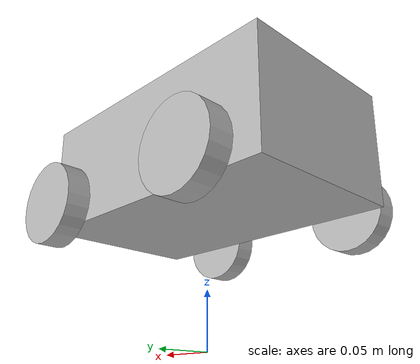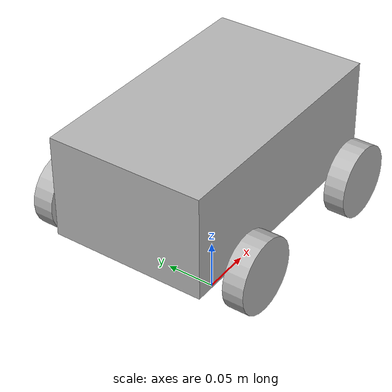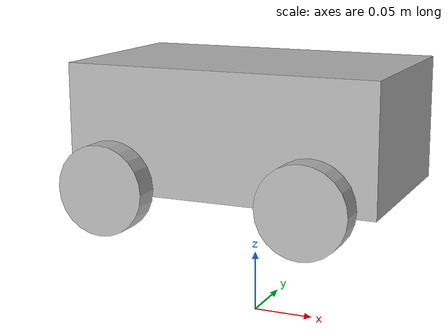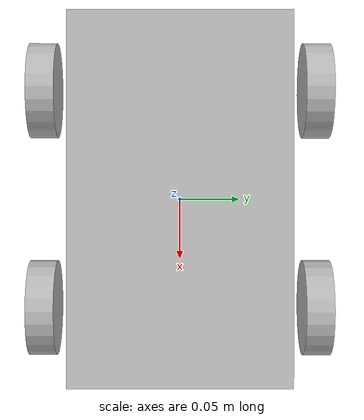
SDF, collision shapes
<?xml version="1.0" ?>
<sdf version="1.5">
  <model name="ugv_mac">

    <link name="base_link">
      <pose>0 0 0.16 0 0 0</pose>
      <inertial>
        <mass>2</mass>
        <inertia>
          <ixx>0.028819942</ixx>
          <iyy>0.047333716</iyy>
          <izz>0.054201740</izz>
          <ixy>0</ixy>
          <ixz>0</ixz>
          <iyz>0</iyz>
        </inertia>
      </inertial>
      <collision name="collision">
        <pose>0 0 0 0 0 0</pose>
        <geometry>
          <box>
            <size>0.25 0.15 0.1</size>
          </box>
        </geometry>
      </collision>
      <visual name="visual">
        <pose>0.045 0 -0.05 1.57 0 0</pose>
        <geometry>
          <mesh>
            <uri>model://ugv_mac/meshes/body.dae</uri>
          </mesh>
        </geometry>
      </visual>
    </link>

    <link name="right_front_wheel">
      <pose>0.08 -0.1 0.12 1.57 0 0</pose>
      <inertial>
        <mass>0.3844</mass>
        <inertia>
          <ixx>0.000324824</ixx>
          <iyy>0.000480000</iyy>
          <izz>0.000324824</izz>
          <ixy>0</ixy>
          <ixz>0</ixz>
          <iyz>0</iyz>
        </inertia>
      </inertial>
      <collision name='right_front_wheel_collision'>
        <pose>0 0 0 0 0 0</pose>
        <geometry>
          <cylinder>
            <length>0.02</length>
            <radius>0.035</radius>
          </cylinder>
        </geometry>
        <surface>
          <friction>
            <ode>
              <mu>0.8</mu>
              <mu2>0.6</mu2>
              <slip1>0.5</slip1>
              <slip2>0.5</slip2>
            </ode>
          </friction>
        </surface>
      </collision>
      <visual name="visual">
        <pose>-0.035 0.015 -0.1 3.14 0 0</pose>
        <geometry>
          <mesh>
            <uri>model://ugv_mac/meshes/front.dae</uri>
          </mesh>
        </geometry>
      </visual>
    </link>

    <link name="right_after_wheel">
      <pose>-0.08 -0.1 0.12 1.57 0 0</pose>
      <inertial>
        <mass>0.3844</mass>
        <inertia>
          <ixx>0.000324824</ixx>
          <iyy>0.000480000</iyy>
          <izz>0.000324824</izz>
          <ixy>0</ixy>
          <ixz>0</ixz>
          <iyz>0</iyz>
        </inertia>
      </inertial>
      <collision name='right_after_wheel_collision'>
        <pose>0 0 0 0 0 0</pose>
        <geometry>
          <cylinder>
            <length>0.02</length>
            <radius>0.035</radius>
          </cylinder>
        </geometry>
        <surface>
          <friction>
            <ode>
              <mu>0.8</mu>
              <mu2>0.6</mu2>
              <slip1>0.5</slip1>
              <slip2>0.5</slip2>
            </ode>
          </friction>
        </surface>
      </collision>
      <visual name="visual">
        <pose>-0.035 0.015 -0.1 3.14 0 0</pose>
        <geometry>
          <mesh>
            <uri>model://ugv_mac/meshes/front.dae</uri>
          </mesh>
        </geometry>
      </visual>
    </link>

    <link name="left_front_wheel">
      <pose>0.08 0.1 0.12 1.57 0 0</pose>
      <inertial>
        <mass>0.3844</mass>
        <inertia>
          <ixx>0.000324824</ixx>
          <iyy>0.000480000</iyy>
          <izz>0.000324824</izz>
          <ixy>0</ixy>
          <ixz>0</ixz>
          <iyz>0</iyz>
        </inertia>
      </inertial>
      <collision name='left_front_wheel_collision'>
        <pose>0 0 0 0 0 0</pose>
        <geometry>
          <cylinder>
            <length>0.02</length>
            <radius>0.035</radius>
          </cylinder>
        </geometry>
        <surface>
          <friction>
            <ode>
              <mu>0.8</mu>
              <mu2>0.6</mu2>
              <slip1>0.5</slip1>
              <slip2>0.5</slip2>
            </ode>
          </friction>
        </surface>
      </collision>
      <visual name="visual">
        <pose>-0.035 -0.015 0.1 0 0 0</pose>
        <geometry>
          <mesh>
            <uri>model://ugv_mac/meshes/front.dae</uri>
          </mesh>
        </geometry>
      </visual>
    </link>

    <link name="left_after_wheel">
      <pose>-0.08 0.1 0.12 1.57 0 0</pose>
      <inertial>
        <mass>0.3844</mass>
        <inertia>
          <ixx>0.000324824</ixx>
          <iyy>0.000480000</iyy>
          <izz>0.000324824</izz>
          <ixy>0</ixy>
          <ixz>0</ixz>
          <iyz>0</iyz>
        </inertia>
      </inertial>
      <collision name='left_after_wheel_collision'>
        <pose>0 0 0 0 0 0</pose>
        <geometry>
          <cylinder>
            <length>0.02</length>
            <radius>0.035</radius>
          </cylinder>
        </geometry>
        <surface>
          <friction>
            <ode>
              <mu>0.8</mu>
              <mu2>0.6</mu2>
              <slip1>0.5</slip1>
              <slip2>0.5</slip2>
            </ode>
          </friction>
        </surface>
      </collision>
      <visual name="visual">
        <pose>-0.035 -0.015 0.1 0 0 0</pose>
        <geometry>
          <mesh>
            <uri>model://ugv_mac/meshes/front.dae</uri>
          </mesh>
        </geometry>
      </visual>
    </link>

    <joint type="revolute" name="right_front_wheel_joint">
      <child>right_front_wheel</child>
      <parent>base_link</parent>
      <axis>
        <xyz>0 1 0</xyz>
        <limit>
          <lower>-1e+16</lower>
          <upper>1e+16</upper>
        </limit>
        <dynamics>
          <spring_reference>0</spring_reference>
          <spring_stiffness>0</spring_stiffness>
        </dynamics>
        <use_parent_model_frame>1</use_parent_model_frame>
      </axis>
    </joint>

    <joint type="revolute" name="right_after_wheel_joint">
      <child>right_after_wheel</child>
      <parent>base_link</parent>
      <axis>
        <xyz>0 1 0</xyz>
        <limit>
          <lower>-1e+16</lower>
          <upper>1e+16</upper>
        </limit>
        <dynamics>
          <spring_reference>0</spring_reference>
          <spring_stiffness>0</spring_stiffness>
        </dynamics>
        <use_parent_model_frame>1</use_parent_model_frame>
      </axis>
    </joint>

    <joint type="revolute" name="left_front_wheel_joint">
      <child>left_front_wheel</child>
      <parent>base_link</parent>
      <axis>
        <xyz>0 1 0</xyz>
        <limit>
          <lower>-1e+16</lower>
          <upper>1e+16</upper>
        </limit>
        <dynamics>
          <spring_reference>0</spring_reference>
          <spring_stiffness>0</spring_stiffness>
        </dynamics>
        <use_parent_model_frame>1</use_parent_model_frame>
      </axis>
    </joint>

    <joint type="revolute" name="left_after_wheel_joint">
      <child>left_after_wheel</child>
      <parent>base_link</parent>
      <axis>
        <xyz>0 1 0</xyz>
        <limit>
          <lower>-1e+16</lower>
          <upper>1e+16</upper>
        </limit>
        <dynamics>
          <spring_reference>0</spring_reference>
          <spring_stiffness>0</spring_stiffness>
        </dynamics>
        <use_parent_model_frame>1</use_parent_model_frame>
      </axis>
    </joint>

  <plugin name="skid_steer_drive_controller" filename="libgazebo_ros_skid_steer_drive.so">
      <alwaysOn>true</alwaysOn>
      <updateRate>20.0</updateRate>
      <leftFrontJoint>left_front_wheel_joint</leftFrontJoint>
      <rightFrontJoint>right_front_wheel_joint</rightFrontJoint>
      <leftRearJoint>left_after_wheel_joint</leftRearJoint>
      <rightRearJoint>right_after_wheel_joint</rightRearJoint>
      <wheelSeparation>0.1966</wheelSeparation>
      <wheelDiameter>0.07</wheelDiameter>
      <torque>3</torque>
      <commandTopic>/sunray_swarm/ugv_1/cmd_vel</commandTopic>
      <odometryTopic>/car_odom</odometryTopic>
      <odometryFrame>odom</odometryFrame>
      <robotBaseFrame>base_link</robotBaseFrame>
      <broadcastTF>1</broadcastTF>
    </plugin>

  </model>
</sdf>
